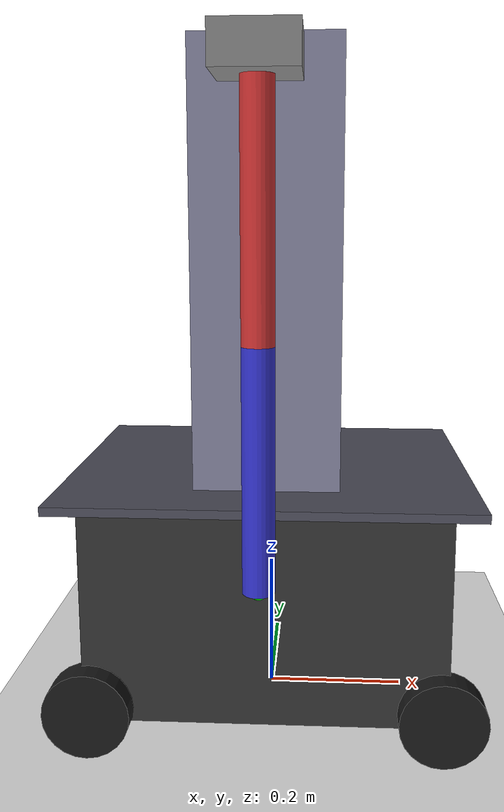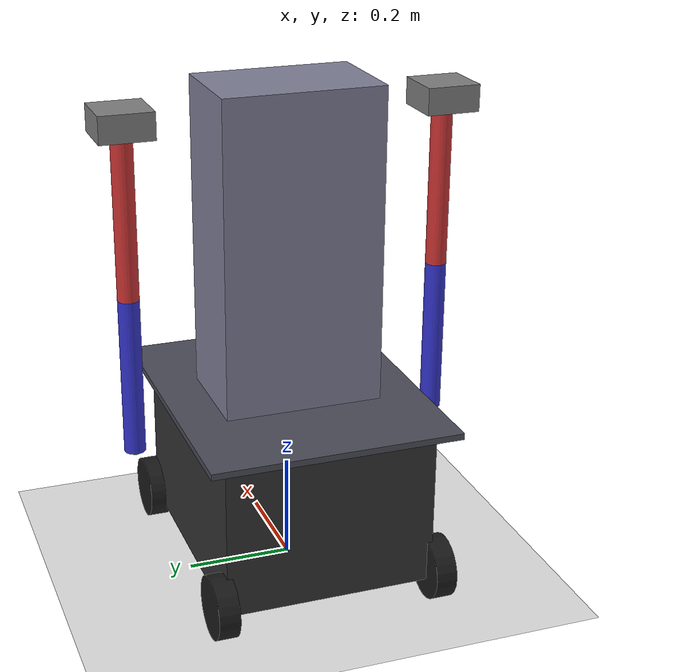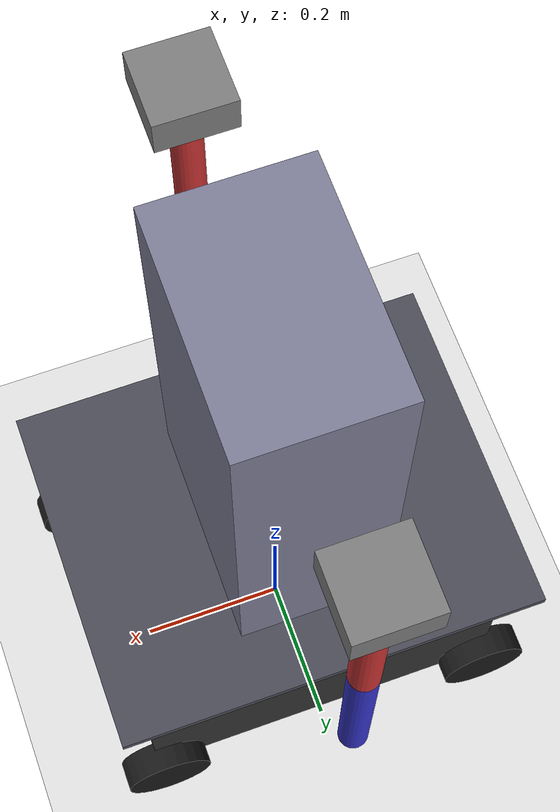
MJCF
<!-- week03 | attach_arm_to_base.py 가 생성. 직접 수정하지 말고 스크립트를 고칠 것 -->
<mujoco model="arm_on_base">
  <compiler angle="radian"/>

  <option timestep="0.001" integrator="implicitfast"/>

  <default>
    <default class="left_main">
      <default class="left_arm">
        <joint actuatorfrcrange="-25 25" damping="0.1" axis="0 1 0"/>
        <geom size="0.02 0.15 0" type="cylinder"/>
        <general forcerange="-25 25" biastype="affine" gainprm="20" biasprm="0 -20"/>
        <default class="left_visual">
          <geom contype="0" conaffinity="0" group="2"/>
        </default>
        <default class="left_collision">
          <geom group="3" rgba="0.6 0.6 0.6 0.3"/>
        </default>
      </default>
    </default>
    <default class="right_main">
      <default class="right_arm">
        <joint actuatorfrcrange="-25 25" damping="0.1" axis="0 1 0"/>
        <geom size="0.02 0.15 0" type="cylinder"/>
        <general forcerange="-25 25" biastype="affine" gainprm="20" biasprm="0 -20"/>
        <default class="right_visual">
          <geom contype="0" conaffinity="0" group="2"/>
        </default>
        <default class="right_collision">
          <geom group="3" rgba="0.6 0.6 0.6 0.3"/>
        </default>
      </default>
    </default>
  </default>

  <worldbody>
    <geom name="floor" size="2 2 0.05" type="plane" rgba="0.9 0.9 0.9 1"/>
    <light pos="0 0 3"/>
    <body name="base" pos="0 0 0.35">
      <joint type="free"/>
      <geom name="deck" size="0.2875 0.236 0.006" type="box" rgba="0.3 0.3 0.35 1" mass="3.7"/>
      <geom name="frame" size="0.25 0.2 0.15" pos="0 0 -0.16" type="box" rgba="0.2 0.2 0.2 1" mass="20"/>
      <geom name="wheel0" size="0.06 0.02" pos="0.24 0.21 -0.29" quat="0.707107 0.707107 0 0" type="cylinder" contype="0" conaffinity="0" rgba="0.1 0.1 0.1 1" mass="0.5"/>
      <geom name="wheel1" size="0.06 0.02" pos="0.24 -0.21 -0.29" quat="0.707107 0.707107 0 0" type="cylinder" contype="0" conaffinity="0" rgba="0.1 0.1 0.1 1" mass="0.5"/>
      <geom name="wheel2" size="0.06 0.02" pos="-0.24 0.21 -0.29" quat="0.707107 0.707107 0 0" type="cylinder" contype="0" conaffinity="0" rgba="0.1 0.1 0.1 1" mass="0.5"/>
      <geom name="wheel3" size="0.06 0.02" pos="-0.24 -0.21 -0.29" quat="0.707107 0.707107 0 0" type="cylinder" contype="0" conaffinity="0" rgba="0.1 0.1 0.1 1" mass="0.5"/>
      <body name="torso" pos="0 0 0.3">
        <geom name="torso_box" size="0.1 0.15 0.3" type="box" rgba="0.5 0.5 0.6 1" mass="10"/>
        <frame pos="0 0.3 0.25">
          <body name="left_base_link" childclass="left_arm">
            <inertial pos="0 0 0" mass="5" diaginertia="0.01 0.01 0.01"/>
            <geom class="left_visual" size="0.05 0.05 0.025" type="box"/>
            <body name="left_upper_arm" pos="0 0 -0.025">
              <inertial pos="0 0 -0.15" mass="1" diaginertia="0.0075 0.0075 0.0002"/>
              <joint name="left_shoulder" range="-2.618 2.618"/>
              <geom class="left_visual" pos="0 0 -0.15" rgba="0.8 0.2 0.2 1"/>
              <geom class="left_collision" pos="0 0 -0.15"/>
              <body name="left_forearm" pos="0 0 -0.3">
                <inertial pos="0 0 -0.15" mass="1" diaginertia="0.0075 0.0075 0.0002"/>
                <joint name="left_elbow" range="-1.047 2.094"/>
                <geom class="left_visual" pos="0 0 -0.15" rgba="0.2 0.2 0.8 1"/>
                <geom class="left_collision" pos="0 0 -0.15"/>
                <site name="left_tip" size="0.01" pos="0 0 -0.3" rgba="0 1 0 1"/>
              </body>
            </body>
          </body>
        </frame>
        <frame pos="0 -0.3 0.25">
          <body name="right_base_link" childclass="right_arm">
            <inertial pos="0 0 0" mass="5" diaginertia="0.01 0.01 0.01"/>
            <geom class="right_visual" size="0.05 0.05 0.025" type="box"/>
            <body name="right_upper_arm" pos="0 0 -0.025">
              <inertial pos="0 0 -0.15" mass="1" diaginertia="0.0075 0.0075 0.0002"/>
              <joint name="right_shoulder" range="-2.618 2.618"/>
              <geom class="right_visual" pos="0 0 -0.15" rgba="0.8 0.2 0.2 1"/>
              <geom class="right_collision" pos="0 0 -0.15"/>
              <body name="right_forearm" pos="0 0 -0.3">
                <inertial pos="0 0 -0.15" mass="1" diaginertia="0.0075 0.0075 0.0002"/>
                <joint name="right_elbow" range="-1.047 2.094"/>
                <geom class="right_visual" pos="0 0 -0.15" rgba="0.2 0.2 0.8 1"/>
                <geom class="right_collision" pos="0 0 -0.15"/>
                <site name="right_tip" size="0.01" pos="0 0 -0.3" rgba="0 1 0 1"/>
              </body>
            </body>
          </body>
        </frame>
      </body>
    </body>
  </worldbody>

  <actuator>
    <general name="left_shoulder_pos" class="left_arm" joint="left_shoulder" ctrlrange="-2.618 2.618"/>
    <general name="left_elbow_pos" class="left_arm" joint="left_elbow" ctrlrange="-1.047 2.094"/>
    <general name="right_shoulder_pos" class="right_arm" joint="right_shoulder" ctrlrange="-2.618 2.618"/>
    <general name="right_elbow_pos" class="right_arm" joint="right_elbow" ctrlrange="-1.047 2.094"/>
  </actuator>

  <sensor>
    <jointpos joint="left_shoulder" name="left_shoulder_q"/>
    <jointvel joint="left_shoulder" name="left_shoulder_qd"/>

    <actuatorfrc actuator="left_shoulder_pos" name="left_shoulder_tau"/>
    <jointpos joint="right_shoulder" name="right_shoulder_q"/>
    <jointvel joint="right_shoulder" name="right_shoulder_qd"/>

    <actuatorfrc actuator="right_shoulder_pos" name="right_shoulder_tau"/>
  </sensor>
</mujoco>
